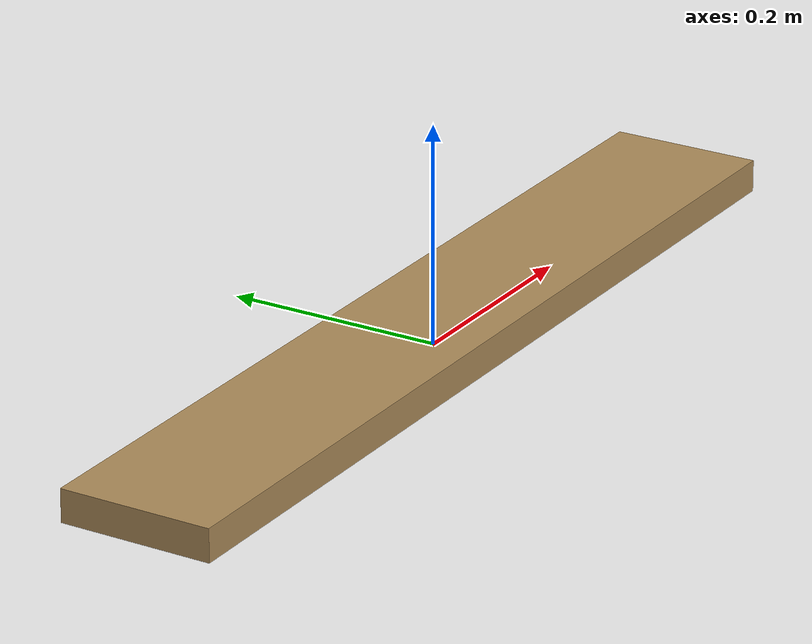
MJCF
<mujoco model="plank">
  <!-- Timber plank 900 x 140 x 30 mm, 2.0 kg (pine). Low debris: a foot-height edge to step
       over or onto. Origin at the bottom centre. Self-authored primitive (CC0). -->
  <asset>
    <material name="mat" rgba="0.68 0.55 0.35 1"/>
  </asset>
  <worldbody>
    <body name="plank">
      <freejoint/>
      <geom name="body" type="box" size="0.45 0.07 0.015" pos="0 0 0.015" mass="2.0"
            material="mat" condim="4" friction="0.85 0.02 0.0005" solimp="0.97 0.995 0.001" solref="0.006 1"/>
    </body>
  </worldbody>
</mujoco>
